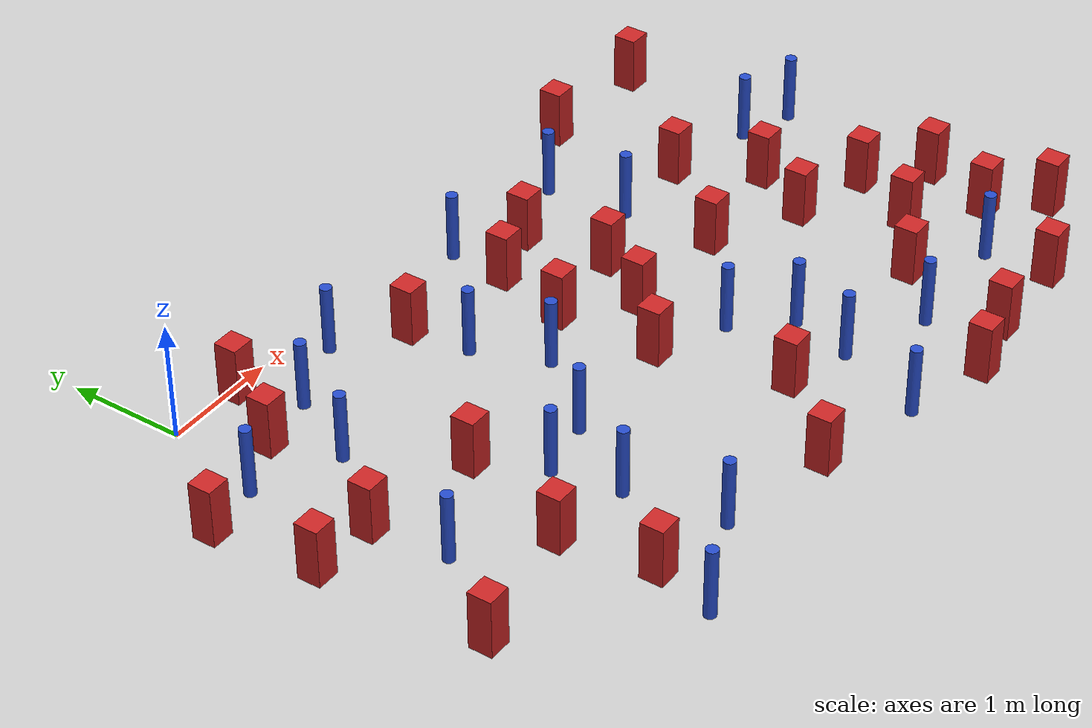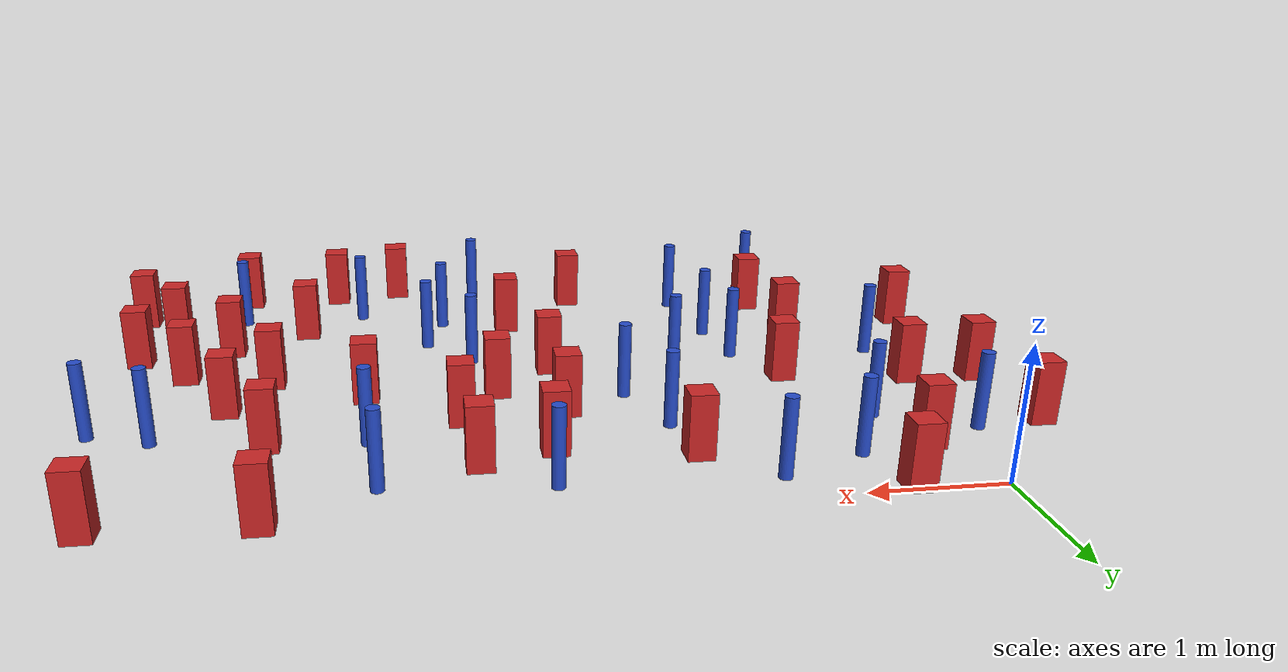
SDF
<sdf version="1.6">
 <model name="dense_63">
  <model name="pole_obstacle0">
   <static>true</static>
   <pose>1.45764528737 -3.91231881478 -9.47619616065e-06 5.49618799737e-07 2.36310414062e-07 -1.55090534798e-07</pose>
   <link name="link">
    <pose>0 0 0.3 0 -0 0</pose>
    <inertial>
     <mass>1</mass>
     <inertia><ixx>0.145833</ixx><ixy>0</ixy><ixz>0</ixz><iyy>0.145833</iyy><iyz>0</iyz><izz>0.125</izz></inertia>
    </inertial>
    <collision name="collision">
     <geometry><cylinder><radius>0.05</radius><length>.6</length></cylinder></geometry>
    </collision>
    <visual name="visual">
     <geometry><cylinder><radius>0.05</radius><length>.6</length></cylinder></geometry>
     <material>
      <script><name>Gazebo/Blue</name><uri>file://media/materials/scripts/gazebo.material</uri></script>
     </material>
    </visual>
   </link>
  </model>
  <model name="square_post_obstacle4">
   <static>true</static>
   <pose>-0.513113206835 -3.23635773973 -6.11067671241e-07 -5.50515727128e-06 -8.79689657224e-07 2.37013304536e-05</pose>
   <link name="link">
    <pose>0 0 0.25 0 -0 0</pose>
    <inertial>
     <mass>100</mass>
     <inertia>
      <ixx>0.166667</ixx>
      <ixy>0</ixy>
      <ixz>0</ixz>
      <iyy>0.166667</iyy>
      <iyz>0</iyz>
      <izz>0.166667</izz>
     </inertia>
    </inertial>
    <collision name="collision"><geometry><box><size>.2 .2 .5</size></box></geometry></collision>
    <visual name="visual">
     <geometry><box><size>.2 .2 .5</size></box></geometry>
     <material>
      <script><name>Gazebo/Red</name><uri>file://media/materials/scripts/gazebo.material</uri></script>
     </material>
    </visual>
   </link>
  </model>
  <model name="pole_obstacle7">
   <static>true</static>
   <pose>0.491600590641 -1.18340248795 -9.47619616065e-06 5.49618799737e-07 2.36310414059e-07 -1.55090534802e-07</pose>
   <link name="link">
    <pose>0 0 0.3 0 -0 0</pose>
    <inertial>
     <mass>1</mass>
     <inertia><ixx>0.145833</ixx><ixy>0</ixy><ixz>0</ixz><iyy>0.145833</iyy><iyz>0</iyz><izz>0.125</izz></inertia>
    </inertial>
    <collision name="collision">
     <geometry><cylinder><radius>0.05</radius><length>.6</length></cylinder></geometry>
    </collision>
    <visual name="visual">
     <geometry><cylinder><radius>0.05</radius><length>.6</length></cylinder></geometry>
     <material>
      <script><name>Gazebo/Blue</name><uri>file://media/materials/scripts/gazebo.material</uri></script>
     </material>
    </visual>
   </link>
  </model>
  <model name="pole_obstacle8">
   <static>true</static>
   <pose>0.036647531542 -2.49097002467 -9.4761961606e-06 5.49618799729e-07 2.36310413998e-07 -1.55090534825e-07</pose>
   <link name="link">
    <pose>0 0 0.3 0 -0 0</pose>
    <inertial>
     <mass>1</mass>
     <inertia><ixx>0.145833</ixx><ixy>0</ixy><ixz>0</ixz><iyy>0.145833</iyy><iyz>0</iyz><izz>0.125</izz></inertia>
    </inertial>
    <collision name="collision">
     <geometry><cylinder><radius>0.05</radius><length>.6</length></cylinder></geometry>
    </collision>
    <visual name="visual">
     <geometry><cylinder><radius>0.05</radius><length>.6</length></cylinder></geometry>
     <material>
      <script><name>Gazebo/Blue</name><uri>file://media/materials/scripts/gazebo.material</uri></script>
     </material>
    </visual>
   </link>
  </model>
  <model name="square_post_obstacle7">
   <static>true</static>
   <pose>-0.0492457941668 -1.85533432549 -6.11067671241e-07 -5.50515727128e-06 -8.79689657224e-07 2.37013304536e-05</pose>
   <link name="link">
    <pose>0 0 0.25 0 -0 0</pose>
    <inertial>
     <mass>100</mass>
     <inertia>
      <ixx>0.166667</ixx>
      <ixy>0</ixy>
      <ixz>0</ixz>
      <iyy>0.166667</iyy>
      <iyz>0</iyz>
      <izz>0.166667</izz>
     </inertia>
    </inertial>
    <collision name="collision"><geometry><box><size>.2 .2 .5</size></box></geometry></collision>
    <visual name="visual">
     <geometry><box><size>.2 .2 .5</size></box></geometry>
     <material>
      <script><name>Gazebo/Red</name><uri>file://media/materials/scripts/gazebo.material</uri></script>
     </material>
    </visual>
   </link>
  </model>
  <model name="pole_obstacle12">
   <static>true</static>
   <pose>4.19699384689 -0.435499464074 -9.47619616065e-06 5.49618799737e-07 2.36310414057e-07 -1.55090534802e-07</pose>
   <link name="link">
    <pose>0 0 0.3 0 -0 0</pose>
    <inertial>
     <mass>1</mass>
     <inertia><ixx>0.145833</ixx><ixy>0</ixy><ixz>0</ixz><iyy>0.145833</iyy><iyz>0</iyz><izz>0.125</izz></inertia>
    </inertial>
    <collision name="collision">
     <geometry><cylinder><radius>0.05</radius><length>.6</length></cylinder></geometry>
    </collision>
    <visual name="visual">
     <geometry><cylinder><radius>0.05</radius><length>.6</length></cylinder></geometry>
     <material>
      <script><name>Gazebo/Blue</name><uri>file://media/materials/scripts/gazebo.material</uri></script>
     </material>
    </visual>
   </link>
  </model>
  <model name="pole_obstacle15">
   <static>true</static>
   <pose>2.05337939577 -1.18928973745 -9.47619616065e-06 5.49618799737e-07 2.36310414072e-07 -1.55090534793e-07</pose>
   <link name="link">
    <pose>0 0 0.3 0 -0 0</pose>
    <inertial>
     <mass>1</mass>
     <inertia><ixx>0.145833</ixx><ixy>0</ixy><ixz>0</ixz><iyy>0.145833</iyy><iyz>0</iyz><izz>0.125</izz></inertia>
    </inertial>
    <collision name="collision">
     <geometry><cylinder><radius>0.05</radius><length>.6</length></cylinder></geometry>
    </collision>
    <visual name="visual">
     <geometry><cylinder><radius>0.05</radius><length>.6</length></cylinder></geometry>
     <material>
      <script><name>Gazebo/Blue</name><uri>file://media/materials/scripts/gazebo.material</uri></script>
     </material>
    </visual>
   </link>
  </model>
  <model name="square_post_obstacle14">
   <static>true</static>
   <pose>3.27732072388 -1.94028528122 -6.11067671241e-07 -5.50515727128e-06 -8.79689657224e-07 2.37013304536e-05</pose>
   <link name="link">
    <pose>0 0 0.25 0 -0 0</pose>
    <inertial>
     <mass>100</mass>
     <inertia>
      <ixx>0.166667</ixx>
      <ixy>0</ixy>
      <ixz>0</ixz>
      <iyy>0.166667</iyy>
      <iyz>0</iyz>
      <izz>0.166667</izz>
     </inertia>
    </inertial>
    <collision name="collision"><geometry><box><size>.2 .2 .5</size></box></geometry></collision>
    <visual name="visual">
     <geometry><box><size>.2 .2 .5</size></box></geometry>
     <material>
      <script><name>Gazebo/Red</name><uri>file://media/materials/scripts/gazebo.material</uri></script>
     </material>
    </visual>
   </link>
  </model>
  <model name="pole_obstacle29">
   <static>true</static>
   <pose>4.38228186623 -3.89737166803 -9.47619616065e-06 5.49618799738e-07 2.36310414051e-07 -1.55090534805e-07</pose>
   <link name="link">
    <pose>0 0 0.3 0 -0 0</pose>
    <inertial>
     <mass>1</mass>
     <inertia><ixx>0.145833</ixx><ixy>0</ixy><ixz>0</ixz><iyy>0.145833</iyy><iyz>0</iyz><izz>0.125</izz></inertia>
    </inertial>
    <collision name="collision">
     <geometry><cylinder><radius>0.05</radius><length>.6</length></cylinder></geometry>
    </collision>
    <visual name="visual">
     <geometry><cylinder><radius>0.05</radius><length>.6</length></cylinder></geometry>
     <material>
      <script><name>Gazebo/Blue</name><uri>file://media/materials/scripts/gazebo.material</uri></script>
     </material>
    </visual>
   </link>
  </model>
  <model name="square_post_obstacle25">
   <static>true</static>
   <pose>3.58611399307 -1.43804017746 -6.11067671241e-07 -5.50515727128e-06 -8.79689657224e-07 2.37013304536e-05</pose>
   <link name="link">
    <pose>0 0 0.25 0 -0 0</pose>
    <inertial>
     <mass>100</mass>
     <inertia>
      <ixx>0.166667</ixx>
      <ixy>0</ixy>
      <ixz>0</ixz>
      <iyy>0.166667</iyy>
      <iyz>0</iyz>
      <izz>0.166667</izz>
     </inertia>
    </inertial>
    <collision name="collision"><geometry><box><size>.2 .2 .5</size></box></geometry></collision>
    <visual name="visual">
     <geometry><box><size>.2 .2 .5</size></box></geometry>
     <material>
      <script><name>Gazebo/Red</name><uri>file://media/materials/scripts/gazebo.material</uri></script>
     </material>
    </visual>
   </link>
  </model>
  <model name="square_post_obstacle28">
   <static>true</static>
   <pose>3.07781566351 -3.44852902437 -6.11067671241e-07 -5.50515727128e-06 -8.79689657224e-07 2.37013304536e-05</pose>
   <link name="link">
    <pose>0 0 0.25 0 -0 0</pose>
    <inertial>
     <mass>100</mass>
     <inertia>
      <ixx>0.166667</ixx>
      <ixy>0</ixy>
      <ixz>0</ixz>
      <iyy>0.166667</iyy>
      <iyz>0</iyz>
      <izz>0.166667</izz>
     </inertia>
    </inertial>
    <collision name="collision"><geometry><box><size>.2 .2 .5</size></box></geometry></collision>
    <visual name="visual">
     <geometry><box><size>.2 .2 .5</size></box></geometry>
     <material>
      <script><name>Gazebo/Red</name><uri>file://media/materials/scripts/gazebo.material</uri></script>
     </material>
    </visual>
   </link>
  </model>
  <model name="pole_obstacle33">
   <static>true</static>
   <pose>3.32996329665 -4.36354754661 -9.47619616065e-06 5.49618799738e-07 2.3631041406e-07 -1.55090534801e-07</pose>
   <link name="link">
    <pose>0 0 0.3 0 -0 0</pose>
    <inertial>
     <mass>1</mass>
     <inertia><ixx>0.145833</ixx><ixy>0</ixy><ixz>0</ixz><iyy>0.145833</iyy><iyz>0</iyz><izz>0.125</izz></inertia>
    </inertial>
    <collision name="collision">
     <geometry><cylinder><radius>0.05</radius><length>.6</length></cylinder></geometry>
    </collision>
    <visual name="visual">
     <geometry><cylinder><radius>0.05</radius><length>.6</length></cylinder></geometry>
     <material>
      <script><name>Gazebo/Blue</name><uri>file://media/materials/scripts/gazebo.material</uri></script>
     </material>
    </visual>
   </link>
  </model>
  <model name="square_post_obstacle32">
   <static>true</static>
   <pose>0.944334524365 -2.0193535119 -6.11067671241e-07 -5.50515727128e-06 -8.79689657224e-07 2.37013304536e-05</pose>
   <link name="link">
    <pose>0 0 0.25 0 -0 0</pose>
    <inertial>
     <mass>100</mass>
     <inertia>
      <ixx>0.166667</ixx>
      <ixy>0</ixy>
      <ixz>0</ixz>
      <iyy>0.166667</iyy>
      <iyz>0</iyz>
      <izz>0.166667</izz>
     </inertia>
    </inertial>
    <collision name="collision"><geometry><box><size>.2 .2 .5</size></box></geometry></collision>
    <visual name="visual">
     <geometry><box><size>.2 .2 .5</size></box></geometry>
     <material>
      <script><name>Gazebo/Red</name><uri>file://media/materials/scripts/gazebo.material</uri></script>
     </material>
    </visual>
   </link>
  </model>
  <model name="square_post_obstacle33">
   <static>true</static>
   <pose>4.90996226972 -0.0184882465239 -6.11067671241e-07 -5.50515727128e-06 -8.79689657224e-07 2.37013304536e-05</pose>
   <link name="link">
    <pose>0 0 0.25 0 -0 0</pose>
    <inertial>
     <mass>100</mass>
     <inertia>
      <ixx>0.166667</ixx>
      <ixy>0</ixy>
      <ixz>0</ixz>
      <iyy>0.166667</iyy>
      <iyz>0</iyz>
      <izz>0.166667</izz>
     </inertia>
    </inertial>
    <collision name="collision"><geometry><box><size>.2 .2 .5</size></box></geometry></collision>
    <visual name="visual">
     <geometry><box><size>.2 .2 .5</size></box></geometry>
     <material>
      <script><name>Gazebo/Red</name><uri>file://media/materials/scripts/gazebo.material</uri></script>
     </material>
    </visual>
   </link>
  </model>
  <model name="pole_obstacle49">
   <static>true</static>
   <pose>1.22181753128 -2.53847772462 -9.47619616065e-06 5.49618799737e-07 2.36310414062e-07 -1.55090534798e-07</pose>
   <link name="link">
    <pose>0 0 0.3 0 -0 0</pose>
    <inertial>
     <mass>1</mass>
     <inertia><ixx>0.145833</ixx><ixy>0</ixy><ixz>0</ixz><iyy>0.145833</iyy><iyz>0</iyz><izz>0.125</izz></inertia>
    </inertial>
    <collision name="collision">
     <geometry><cylinder><radius>0.05</radius><length>.6</length></cylinder></geometry>
    </collision>
    <visual name="visual">
     <geometry><cylinder><radius>0.05</radius><length>.6</length></cylinder></geometry>
     <material>
      <script><name>Gazebo/Blue</name><uri>file://media/materials/scripts/gazebo.material</uri></script>
     </material>
    </visual>
   </link>
  </model>
  <model name="pole_obstacle54">
   <static>true</static>
   <pose>6.30250653754 -1.4830554348 -9.47619616065e-06 5.49618799738e-07 2.36310414071e-07 -1.55090534796e-07</pose>
   <link name="link">
    <pose>0 0 0.3 0 -0 0</pose>
    <inertial>
     <mass>1</mass>
     <inertia><ixx>0.145833</ixx><ixy>0</ixy><ixz>0</ixz><iyy>0.145833</iyy><iyz>0</iyz><izz>0.125</izz></inertia>
    </inertial>
    <collision name="collision">
     <geometry><cylinder><radius>0.05</radius><length>.6</length></cylinder></geometry>
    </collision>
    <visual name="visual">
     <geometry><cylinder><radius>0.05</radius><length>.6</length></cylinder></geometry>
     <material>
      <script><name>Gazebo/Blue</name><uri>file://media/materials/scripts/gazebo.material</uri></script>
     </material>
    </visual>
   </link>
  </model>
  <model name="square_post_obstacle45">
   <static>true</static>
   <pose>0.733690018151 -3.7953399862 -6.11067671241e-07 -5.50515727128e-06 -8.79689657224e-07 2.37013304536e-05</pose>
   <link name="link">
    <pose>0 0 0.25 0 -0 0</pose>
    <inertial>
     <mass>100</mass>
     <inertia>
      <ixx>0.166667</ixx>
      <ixy>0</ixy>
      <ixz>0</ixz>
      <iyy>0.166667</iyy>
      <iyz>0</iyz>
      <izz>0.166667</izz>
     </inertia>
    </inertial>
    <collision name="collision"><geometry><box><size>.2 .2 .5</size></box></geometry></collision>
    <visual name="visual">
     <geometry><box><size>.2 .2 .5</size></box></geometry>
     <material>
      <script><name>Gazebo/Red</name><uri>file://media/materials/scripts/gazebo.material</uri></script>
     </material>
    </visual>
   </link>
  </model>
  <model name="square_post_obstacle46">
   <static>true</static>
   <pose>6.33735917711 -3.96002381666 -6.11067671241e-07 -5.50515727128e-06 -8.79689657224e-07 2.37013304536e-05</pose>
   <link name="link">
    <pose>0 0 0.25 0 -0 0</pose>
    <inertial>
     <mass>100</mass>
     <inertia>
      <ixx>0.166667</ixx>
      <ixy>0</ixy>
      <ixz>0</ixz>
      <iyy>0.166667</iyy>
      <iyz>0</iyz>
      <izz>0.166667</izz>
     </inertia>
    </inertial>
    <collision name="collision"><geometry><box><size>.2 .2 .5</size></box></geometry></collision>
    <visual name="visual">
     <geometry><box><size>.2 .2 .5</size></box></geometry>
     <material>
      <script><name>Gazebo/Red</name><uri>file://media/materials/scripts/gazebo.material</uri></script>
     </material>
    </visual>
   </link>
  </model>
  <model name="pole_obstacle62">
   <static>true</static>
   <pose>0.815735617671 -0.556137734574 -9.47619616065e-06 5.49618799737e-07 2.36310414058e-07 -1.55090534802e-07</pose>
   <link name="link">
    <pose>0 0 0.3 0 -0 0</pose>
    <inertial>
     <mass>1</mass>
     <inertia><ixx>0.145833</ixx><ixy>0</ixy><ixz>0</ixz><iyy>0.145833</iyy><iyz>0</iyz><izz>0.125</izz></inertia>
    </inertial>
    <collision name="collision">
     <geometry><cylinder><radius>0.05</radius><length>.6</length></cylinder></geometry>
    </collision>
    <visual name="visual">
     <geometry><cylinder><radius>0.05</radius><length>.6</length></cylinder></geometry>
     <material>
      <script><name>Gazebo/Blue</name><uri>file://media/materials/scripts/gazebo.material</uri></script>
     </material>
    </visual>
   </link>
  </model>
  <model name="square_post_obstacle53">
   <static>true</static>
   <pose>4.99241569234 -1.16344092513 -6.11067671241e-07 -5.50515727128e-06 -8.79689657224e-07 2.37013304536e-05</pose>
   <link name="link">
    <pose>0 0 0.25 0 -0 0</pose>
    <inertial>
     <mass>100</mass>
     <inertia>
      <ixx>0.166667</ixx>
      <ixy>0</ixy>
      <ixz>0</ixz>
      <iyy>0.166667</iyy>
      <iyz>0</iyz>
      <izz>0.166667</izz>
     </inertia>
    </inertial>
    <collision name="collision"><geometry><box><size>.2 .2 .5</size></box></geometry></collision>
    <visual name="visual">
     <geometry><box><size>.2 .2 .5</size></box></geometry>
     <material>
      <script><name>Gazebo/Red</name><uri>file://media/materials/scripts/gazebo.material</uri></script>
     </material>
    </visual>
   </link>
  </model>
  <model name="square_post_obstacle70">
   <static>true</static>
   <pose>3.50005662282 -0.685359226608 -6.11067671241e-07 -5.50515727128e-06 -8.79689657224e-07 2.37013304536e-05</pose>
   <link name="link">
    <pose>0 0 0.25 0 -0 0</pose>
    <inertial>
     <mass>100</mass>
     <inertia>
      <ixx>0.166667</ixx>
      <ixy>0</ixy>
      <ixz>0</ixz>
      <iyy>0.166667</iyy>
      <iyz>0</iyz>
      <izz>0.166667</izz>
     </inertia>
    </inertial>
    <collision name="collision"><geometry><box><size>.2 .2 .5</size></box></geometry></collision>
    <visual name="visual">
     <geometry><box><size>.2 .2 .5</size></box></geometry>
     <material>
      <script><name>Gazebo/Red</name><uri>file://media/materials/scripts/gazebo.material</uri></script>
     </material>
    </visual>
   </link>
  </model>
  <model name="pole_obstacle83">
   <static>true</static>
   <pose>2.29108792412 -1.79447740261 -9.47619616065e-06 5.49618799737e-07 2.36310414072e-07 -1.55090534793e-07</pose>
   <link name="link">
    <pose>0 0 0.3 0 -0 0</pose>
    <inertial>
     <mass>1</mass>
     <inertia><ixx>0.145833</ixx><ixy>0</ixy><ixz>0</ixz><iyy>0.145833</iyy><iyz>0</iyz><izz>0.125</izz></inertia>
    </inertial>
    <collision name="collision">
     <geometry><cylinder><radius>0.05</radius><length>.6</length></cylinder></geometry>
    </collision>
    <visual name="visual">
     <geometry><cylinder><radius>0.05</radius><length>.6</length></cylinder></geometry>
     <material>
      <script><name>Gazebo/Blue</name><uri>file://media/materials/scripts/gazebo.material</uri></script>
     </material>
    </visual>
   </link>
  </model>
  <model name="pole_obstacle89">
   <static>true</static>
   <pose>3.43357874101 -2.65526650992 -9.47619616065e-06 5.49618799737e-07 2.36310414051e-07 -1.55090534807e-07</pose>
   <link name="link">
    <pose>0 0 0.3 0 -0 0</pose>
    <inertial>
     <mass>1</mass>
     <inertia><ixx>0.145833</ixx><ixy>0</ixy><ixz>0</ixz><iyy>0.145833</iyy><iyz>0</iyz><izz>0.125</izz></inertia>
    </inertial>
    <collision name="collision">
     <geometry><cylinder><radius>0.05</radius><length>.6</length></cylinder></geometry>
    </collision>
    <visual name="visual">
     <geometry><cylinder><radius>0.05</radius><length>.6</length></cylinder></geometry>
     <material>
      <script><name>Gazebo/Blue</name><uri>file://media/materials/scripts/gazebo.material</uri></script>
     </material>
    </visual>
   </link>
  </model>
  <model name="square_post_obstacle84">
   <static>true</static>
   <pose>5.46082386531 -3.09907040379 -6.11067671241e-07 -5.50515727128e-06 -8.79689657224e-07 2.37013304536e-05</pose>
   <link name="link">
    <pose>0 0 0.25 0 -0 0</pose>
    <inertial>
     <mass>100</mass>
     <inertia>
      <ixx>0.166667</ixx>
      <ixy>0</ixy>
      <ixz>0</ixz>
      <iyy>0.166667</iyy>
      <iyz>0</iyz>
      <izz>0.166667</izz>
     </inertia>
    </inertial>
    <collision name="collision"><geometry><box><size>.2 .2 .5</size></box></geometry></collision>
    <visual name="visual">
     <geometry><box><size>.2 .2 .5</size></box></geometry>
     <material>
      <script><name>Gazebo/Red</name><uri>file://media/materials/scripts/gazebo.material</uri></script>
     </material>
    </visual>
   </link>
  </model>
  <model name="pole_obstacle93">
   <static>true</static>
   <pose>3.79655432508 -3.07418397999 -9.47619616065e-06 5.49618799737e-07 2.36310414051e-07 -1.55090534807e-07</pose>
   <link name="link">
    <pose>0 0 0.3 0 -0 0</pose>
    <inertial>
     <mass>1</mass>
     <inertia><ixx>0.145833</ixx><ixy>0</ixy><ixz>0</ixz><iyy>0.145833</iyy><iyz>0</iyz><izz>0.125</izz></inertia>
    </inertial>
    <collision name="collision">
     <geometry><cylinder><radius>0.05</radius><length>.6</length></cylinder></geometry>
    </collision>
    <visual name="visual">
     <geometry><cylinder><radius>0.05</radius><length>.6</length></cylinder></geometry>
     <material>
      <script><name>Gazebo/Blue</name><uri>file://media/materials/scripts/gazebo.material</uri></script>
     </material>
    </visual>
   </link>
  </model>
  <model name="pole_obstacle99">
   <static>true</static>
   <pose>3.00447818259 -0.332797958913 -9.47619616065e-06 5.49618799738e-07 2.36310414074e-07 -1.55090534794e-07</pose>
   <link name="link">
    <pose>0 0 0.3 0 -0 0</pose>
    <inertial>
     <mass>1</mass>
     <inertia><ixx>0.145833</ixx><ixy>0</ixy><ixz>0</ixz><iyy>0.145833</iyy><iyz>0</iyz><izz>0.125</izz></inertia>
    </inertial>
    <collision name="collision">
     <geometry><cylinder><radius>0.05</radius><length>.6</length></cylinder></geometry>
    </collision>
    <visual name="visual">
     <geometry><cylinder><radius>0.05</radius><length>.6</length></cylinder></geometry>
     <material>
      <script><name>Gazebo/Blue</name><uri>file://media/materials/scripts/gazebo.material</uri></script>
     </material>
    </visual>
   </link>
  </model>
  <model name="pole_obstacle108">
   <static>true</static>
   <pose>1.32068198017 -3.10183576846 -9.47619616065e-06 5.49618799737e-07 2.36310414062e-07 -1.55090534798e-07</pose>
   <link name="link">
    <pose>0 0 0.3 0 -0 0</pose>
    <inertial>
     <mass>1</mass>
     <inertia><ixx>0.145833</ixx><ixy>0</ixy><ixz>0</ixz><iyy>0.145833</iyy><iyz>0</iyz><izz>0.125</izz></inertia>
    </inertial>
    <collision name="collision">
     <geometry><cylinder><radius>0.05</radius><length>.6</length></cylinder></geometry>
    </collision>
    <visual name="visual">
     <geometry><cylinder><radius>0.05</radius><length>.6</length></cylinder></geometry>
     <material>
      <script><name>Gazebo/Blue</name><uri>file://media/materials/scripts/gazebo.material</uri></script>
     </material>
    </visual>
   </link>
  </model>
  <model name="pole_obstacle112">
   <static>true</static>
   <pose>3.64876796155 -3.60367646899 -9.47619616065e-06 5.49618799737e-07 2.36310414051e-07 -1.55090534807e-07</pose>
   <link name="link">
    <pose>0 0 0.3 0 -0 0</pose>
    <inertial>
     <mass>1</mass>
     <inertia><ixx>0.145833</ixx><ixy>0</ixy><ixz>0</ixz><iyy>0.145833</iyy><iyz>0</iyz><izz>0.125</izz></inertia>
    </inertial>
    <collision name="collision">
     <geometry><cylinder><radius>0.05</radius><length>.6</length></cylinder></geometry>
    </collision>
    <visual name="visual">
     <geometry><cylinder><radius>0.05</radius><length>.6</length></cylinder></geometry>
     <material>
      <script><name>Gazebo/Blue</name><uri>file://media/materials/scripts/gazebo.material</uri></script>
     </material>
    </visual>
   </link>
  </model>
  <model name="square_post_obstacle120">
   <static>true</static>
   <pose>0.637352127785 -0.0540733412512 -6.11067671241e-07 -5.50515727128e-06 -8.79689657224e-07 2.37013304536e-05</pose>
   <link name="link">
    <pose>0 0 0.25 0 -0 0</pose>
    <inertial>
     <mass>100</mass>
     <inertia>
      <ixx>0.166667</ixx>
      <ixy>0</ixy>
      <ixz>0</ixz>
      <iyy>0.166667</iyy>
      <iyz>0</iyz>
      <izz>0.166667</izz>
     </inertia>
    </inertial>
    <collision name="collision"><geometry><box><size>.2 .2 .5</size></box></geometry></collision>
    <visual name="visual">
     <geometry><box><size>.2 .2 .5</size></box></geometry>
     <material>
      <script><name>Gazebo/Red</name><uri>file://media/materials/scripts/gazebo.material</uri></script>
     </material>
    </visual>
   </link>
  </model>
  <model name="pole_obstacle120">
   <static>true</static>
   <pose>-0.201980382916 -0.878380960051 -9.47619616065e-06 5.49618799737e-07 2.36310414051e-07 -1.55090534806e-07</pose>
   <link name="link">
    <pose>0 0 0.3 0 -0 0</pose>
    <inertial>
     <mass>1</mass>
     <inertia><ixx>0.145833</ixx><ixy>0</ixy><ixz>0</ixz><iyy>0.145833</iyy><iyz>0</iyz><izz>0.125</izz></inertia>
    </inertial>
    <collision name="collision">
     <geometry><cylinder><radius>0.05</radius><length>.6</length></cylinder></geometry>
    </collision>
    <visual name="visual">
     <geometry><cylinder><radius>0.05</radius><length>.6</length></cylinder></geometry>
     <material>
      <script><name>Gazebo/Blue</name><uri>file://media/materials/scripts/gazebo.material</uri></script>
     </material>
    </visual>
   </link>
  </model>
  <model name="pole_obstacle126">
   <static>true</static>
   <pose>0.591665066067 -4.31535992664 -9.47619616065e-06 5.49618799737e-07 2.36310414065e-07 -1.55090534796e-07</pose>
   <link name="link">
    <pose>0 0 0.3 0 -0 0</pose>
    <inertial>
     <mass>1</mass>
     <inertia><ixx>0.145833</ixx><ixy>0</ixy><ixz>0</ixz><iyy>0.145833</iyy><iyz>0</iyz><izz>0.125</izz></inertia>
    </inertial>
    <collision name="collision">
     <geometry><cylinder><radius>0.05</radius><length>.6</length></cylinder></geometry>
    </collision>
    <visual name="visual">
     <geometry><cylinder><radius>0.05</radius><length>.6</length></cylinder></geometry>
     <material>
      <script><name>Gazebo/Blue</name><uri>file://media/materials/scripts/gazebo.material</uri></script>
     </material>
    </visual>
   </link>
  </model>
  <model name="square_post_obstacle127">
   <static>true</static>
   <pose>5.44596167424 -4.41347139397 -6.11067671241e-07 -5.50515727128e-06 -8.79689657224e-07 2.37013304536e-05</pose>
   <link name="link">
    <pose>0 0 0.25 0 -0 0</pose>
    <inertial>
     <mass>100</mass>
     <inertia>
      <ixx>0.166667</ixx>
      <ixy>0</ixy>
      <ixz>0</ixz>
      <iyy>0.166667</iyy>
      <iyz>0</iyz>
      <izz>0.166667</izz>
     </inertia>
    </inertial>
    <collision name="collision"><geometry><box><size>.2 .2 .5</size></box></geometry></collision>
    <visual name="visual">
     <geometry><box><size>.2 .2 .5</size></box></geometry>
     <material>
      <script><name>Gazebo/Red</name><uri>file://media/materials/scripts/gazebo.material</uri></script>
     </material>
    </visual>
   </link>
  </model>
  <model name="square_post_obstacle136">
   <static>true</static>
   <pose>5.35245002957 -1.80885654215 -6.11067671241e-07 -5.50515727128e-06 -8.79689657224e-07 2.37013304536e-05</pose>
   <link name="link">
    <pose>0 0 0.25 0 -0 0</pose>
    <inertial>
     <mass>100</mass>
     <inertia>
      <ixx>0.166667</ixx>
      <ixy>0</ixy>
      <ixz>0</ixz>
      <iyy>0.166667</iyy>
      <iyz>0</iyz>
      <izz>0.166667</izz>
     </inertia>
    </inertial>
    <collision name="collision"><geometry><box><size>.2 .2 .5</size></box></geometry></collision>
    <visual name="visual">
     <geometry><box><size>.2 .2 .5</size></box></geometry>
     <material>
      <script><name>Gazebo/Red</name><uri>file://media/materials/scripts/gazebo.material</uri></script>
     </material>
    </visual>
   </link>
  </model>
  <model name="square_post_obstacle138">
   <static>true</static>
   <pose>4.30357921367 -1.96160060492 -6.11067671241e-07 -5.50515727128e-06 -8.79689657224e-07 2.37013304536e-05</pose>
   <link name="link">
    <pose>0 0 0.25 0 -0 0</pose>
    <inertial>
     <mass>100</mass>
     <inertia>
      <ixx>0.166667</ixx>
      <ixy>0</ixy>
      <ixz>0</ixz>
      <iyy>0.166667</iyy>
      <iyz>0</iyz>
      <izz>0.166667</izz>
     </inertia>
    </inertial>
    <collision name="collision"><geometry><box><size>.2 .2 .5</size></box></geometry></collision>
    <visual name="visual">
     <geometry><box><size>.2 .2 .5</size></box></geometry>
     <material>
      <script><name>Gazebo/Red</name><uri>file://media/materials/scripts/gazebo.material</uri></script>
     </material>
    </visual>
   </link>
  </model>
  <model name="square_post_obstacle142">
   <static>true</static>
   <pose>0.606535032504 -3.0171237286 -6.11067671241e-07 -5.50515727128e-06 -8.79689657224e-07 2.37013304536e-05</pose>
   <link name="link">
    <pose>0 0 0.25 0 -0 0</pose>
    <inertial>
     <mass>100</mass>
     <inertia>
      <ixx>0.166667</ixx>
      <ixy>0</ixy>
      <ixz>0</ixz>
      <iyy>0.166667</iyy>
      <iyz>0</iyz>
      <izz>0.166667</izz>
     </inertia>
    </inertial>
    <collision name="collision"><geometry><box><size>.2 .2 .5</size></box></geometry></collision>
    <visual name="visual">
     <geometry><box><size>.2 .2 .5</size></box></geometry>
     <material>
      <script><name>Gazebo/Red</name><uri>file://media/materials/scripts/gazebo.material</uri></script>
     </material>
    </visual>
   </link>
  </model>
  <model name="square_post_obstacle147">
   <static>true</static>
   <pose>5.05735936688 -2.34002270155 -6.11067671241e-07 -5.50515727128e-06 -8.79689657224e-07 2.37013304536e-05</pose>
   <link name="link">
    <pose>0 0 0.25 0 -0 0</pose>
    <inertial>
     <mass>100</mass>
     <inertia>
      <ixx>0.166667</ixx>
      <ixy>0</ixy>
      <ixz>0</ixz>
      <iyy>0.166667</iyy>
      <iyz>0</iyz>
      <izz>0.166667</izz>
     </inertia>
    </inertial>
    <collision name="collision"><geometry><box><size>.2 .2 .5</size></box></geometry></collision>
    <visual name="visual">
     <geometry><box><size>.2 .2 .5</size></box></geometry>
     <material>
      <script><name>Gazebo/Red</name><uri>file://media/materials/scripts/gazebo.material</uri></script>
     </material>
    </visual>
   </link>
  </model>
  <model name="square_post_obstacle157">
   <static>true</static>
   <pose>2.78221780398 -1.52225461219 -6.11067671241e-07 -5.50515727128e-06 -8.79689657224e-07 2.37013304536e-05</pose>
   <link name="link">
    <pose>0 0 0.25 0 -0 0</pose>
    <inertial>
     <mass>100</mass>
     <inertia>
      <ixx>0.166667</ixx>
      <ixy>0</ixy>
      <ixz>0</ixz>
      <iyy>0.166667</iyy>
      <iyz>0</iyz>
      <izz>0.166667</izz>
     </inertia>
    </inertial>
    <collision name="collision"><geometry><box><size>.2 .2 .5</size></box></geometry></collision>
    <visual name="visual">
     <geometry><box><size>.2 .2 .5</size></box></geometry>
     <material>
      <script><name>Gazebo/Red</name><uri>file://media/materials/scripts/gazebo.material</uri></script>
     </material>
    </visual>
   </link>
  </model>
  <model name="square_post_obstacle162">
   <static>true</static>
   <pose>5.75767300333 -2.5189554892 -6.11067671241e-07 -5.50515727128e-06 -8.79689657224e-07 2.37013304536e-05</pose>
   <link name="link">
    <pose>0 0 0.25 0 -0 0</pose>
    <inertial>
     <mass>100</mass>
     <inertia>
      <ixx>0.166667</ixx>
      <ixy>0</ixy>
      <ixz>0</ixz>
      <iyy>0.166667</iyy>
      <iyz>0</iyz>
      <izz>0.166667</izz>
     </inertia>
    </inertial>
    <collision name="collision"><geometry><box><size>.2 .2 .5</size></box></geometry></collision>
    <visual name="visual">
     <geometry><box><size>.2 .2 .5</size></box></geometry>
     <material>
      <script><name>Gazebo/Red</name><uri>file://media/materials/scripts/gazebo.material</uri></script>
     </material>
    </visual>
   </link>
  </model>
  <model name="square_post_obstacle167">
   <static>true</static>
   <pose>-0.709812378945 -0.954358556164 -6.11067671241e-07 -5.50515727128e-06 -8.79689657224e-07 2.37013304536e-05</pose>
   <link name="link">
    <pose>0 0 0.25 0 -0 0</pose>
    <inertial>
     <mass>100</mass>
     <inertia>
      <ixx>0.166667</ixx>
      <ixy>0</ixy>
      <ixz>0</ixz>
      <iyy>0.166667</iyy>
      <iyz>0</iyz>
      <izz>0.166667</izz>
     </inertia>
    </inertial>
    <collision name="collision"><geometry><box><size>.2 .2 .5</size></box></geometry></collision>
    <visual name="visual">
     <geometry><box><size>.2 .2 .5</size></box></geometry>
     <material>
      <script><name>Gazebo/Red</name><uri>file://media/materials/scripts/gazebo.material</uri></script>
     </material>
    </visual>
   </link>
  </model>
  <model name="pole_obstacle172">
   <static>true</static>
   <pose>5.43516915783 -3.85814082088 -9.47619616065e-06 5.49618799738e-07 2.36310414051e-07 -1.55090534805e-07</pose>
   <link name="link">
    <pose>0 0 0.3 0 -0 0</pose>
    <inertial>
     <mass>1</mass>
     <inertia><ixx>0.145833</ixx><ixy>0</ixy><ixz>0</ixz><iyy>0.145833</iyy><iyz>0</iyz><izz>0.125</izz></inertia>
    </inertial>
    <collision name="collision">
     <geometry><cylinder><radius>0.05</radius><length>.6</length></cylinder></geometry>
    </collision>
    <visual name="visual">
     <geometry><cylinder><radius>0.05</radius><length>.6</length></cylinder></geometry>
     <material>
      <script><name>Gazebo/Blue</name><uri>file://media/materials/scripts/gazebo.material</uri></script>
     </material>
    </visual>
   </link>
  </model>
  <model name="square_post_obstacle172">
   <static>true</static>
   <pose>4.85409691866 -3.47517051072 -6.11067671241e-07 -5.50515727128e-06 -8.79689657224e-07 2.37013304536e-05</pose>
   <link name="link">
    <pose>0 0 0.25 0 -0 0</pose>
    <inertial>
     <mass>100</mass>
     <inertia>
      <ixx>0.166667</ixx>
      <ixy>0</ixy>
      <ixz>0</ixz>
      <iyy>0.166667</iyy>
      <iyz>0</iyz>
      <izz>0.166667</izz>
     </inertia>
    </inertial>
    <collision name="collision"><geometry><box><size>.2 .2 .5</size></box></geometry></collision>
    <visual name="visual">
     <geometry><box><size>.2 .2 .5</size></box></geometry>
     <material>
      <script><name>Gazebo/Red</name><uri>file://media/materials/scripts/gazebo.material</uri></script>
     </material>
    </visual>
   </link>
  </model>
  <model name="pole_obstacle179">
   <static>true</static>
   <pose>1.74304431504 -2.42977251697 -9.47619616065e-06 5.49618799737e-07 2.36310414062e-07 -1.55090534798e-07</pose>
   <link name="link">
    <pose>0 0 0.3 0 -0 0</pose>
    <inertial>
     <mass>1</mass>
     <inertia><ixx>0.145833</ixx><ixy>0</ixy><ixz>0</ixz><iyy>0.145833</iyy><iyz>0</iyz><izz>0.125</izz></inertia>
    </inertial>
    <collision name="collision">
     <geometry><cylinder><radius>0.05</radius><length>.6</length></cylinder></geometry>
    </collision>
    <visual name="visual">
     <geometry><cylinder><radius>0.05</radius><length>.6</length></cylinder></geometry>
     <material>
      <script><name>Gazebo/Blue</name><uri>file://media/materials/scripts/gazebo.material</uri></script>
     </material>
    </visual>
   </link>
  </model>
  <model name="square_post_obstacle177">
   <static>true</static>
   <pose>2.42569512224 -4.12944971251 -6.11067671241e-07 -5.50515727128e-06 -8.79689657224e-07 2.37013304536e-05</pose>
   <link name="link">
    <pose>0 0 0.25 0 -0 0</pose>
    <inertial>
     <mass>100</mass>
     <inertia>
      <ixx>0.166667</ixx>
      <ixy>0</ixy>
      <ixz>0</ixz>
      <iyy>0.166667</iyy>
      <iyz>0</iyz>
      <izz>0.166667</izz>
     </inertia>
    </inertial>
    <collision name="collision"><geometry><box><size>.2 .2 .5</size></box></geometry></collision>
    <visual name="visual">
     <geometry><box><size>.2 .2 .5</size></box></geometry>
     <material>
      <script><name>Gazebo/Red</name><uri>file://media/materials/scripts/gazebo.material</uri></script>
     </material>
    </visual>
   </link>
  </model>
  <model name="square_post_obstacle184">
   <static>true</static>
   <pose>1.96667768764 -0.68173326406 -6.11067671241e-07 -5.50515727128e-06 -8.79689657224e-07 2.37013304536e-05</pose>
   <link name="link">
    <pose>0 0 0.25 0 -0 0</pose>
    <inertial>
     <mass>100</mass>
     <inertia>
      <ixx>0.166667</ixx>
      <ixy>0</ixy>
      <ixz>0</ixz>
      <iyy>0.166667</iyy>
      <iyz>0</iyz>
      <izz>0.166667</izz>
     </inertia>
    </inertial>
    <collision name="collision"><geometry><box><size>.2 .2 .5</size></box></geometry></collision>
    <visual name="visual">
     <geometry><box><size>.2 .2 .5</size></box></geometry>
     <material>
      <script><name>Gazebo/Red</name><uri>file://media/materials/scripts/gazebo.material</uri></script>
     </material>
    </visual>
   </link>
  </model>
  <model name="square_post_obstacle190">
   <static>true</static>
   <pose>4.62704097338 -4.43661426832 -6.11067671241e-07 -5.50515727128e-06 -8.79689657224e-07 2.37013304536e-05</pose>
   <link name="link">
    <pose>0 0 0.25 0 -0 0</pose>
    <inertial>
     <mass>100</mass>
     <inertia>
      <ixx>0.166667</ixx>
      <ixy>0</ixy>
      <ixz>0</ixz>
      <iyy>0.166667</iyy>
      <iyz>0</iyz>
      <izz>0.166667</izz>
     </inertia>
    </inertial>
    <collision name="collision"><geometry><box><size>.2 .2 .5</size></box></geometry></collision>
    <visual name="visual">
     <geometry><box><size>.2 .2 .5</size></box></geometry>
     <material>
      <script><name>Gazebo/Red</name><uri>file://media/materials/scripts/gazebo.material</uri></script>
     </material>
    </visual>
   </link>
  </model>
  <model name="square_post_obstacle192">
   <static>true</static>
   <pose>6.20075531926 -2.93160722702 -6.11067671241e-07 -5.50515727128e-06 -8.79689657224e-07 2.37013304536e-05</pose>
   <link name="link">
    <pose>0 0 0.25 0 -0 0</pose>
    <inertial>
     <mass>100</mass>
     <inertia>
      <ixx>0.166667</ixx>
      <ixy>0</ixy>
      <ixz>0</ixz>
      <iyy>0.166667</iyy>
      <iyz>0</iyz>
      <izz>0.166667</izz>
     </inertia>
    </inertial>
    <collision name="collision"><geometry><box><size>.2 .2 .5</size></box></geometry></collision>
    <visual name="visual">
     <geometry><box><size>.2 .2 .5</size></box></geometry>
     <material>
      <script><name>Gazebo/Red</name><uri>file://media/materials/scripts/gazebo.material</uri></script>
     </material>
    </visual>
   </link>
  </model>
  <model name="square_post_obstacle193">
   <static>true</static>
   <pose>0.28379956665 -0.656442227965 -6.11067671241e-07 -5.50515727128e-06 -8.79689657224e-07 2.37013304536e-05</pose>
   <link name="link">
    <pose>0 0 0.25 0 -0 0</pose>
    <inertial>
     <mass>100</mass>
     <inertia>
      <ixx>0.166667</ixx>
      <ixy>0</ixy>
      <ixz>0</ixz>
      <iyy>0.166667</iyy>
      <iyz>0</iyz>
      <izz>0.166667</izz>
     </inertia>
    </inertial>
    <collision name="collision"><geometry><box><size>.2 .2 .5</size></box></geometry></collision>
    <visual name="visual">
     <geometry><box><size>.2 .2 .5</size></box></geometry>
     <material>
      <script><name>Gazebo/Red</name><uri>file://media/materials/scripts/gazebo.material</uri></script>
     </material>
    </visual>
   </link>
  </model>
  <model name="square_post_obstacle195">
   <static>true</static>
   <pose>-0.619637948167 -1.83423185392 -6.11067671241e-07 -5.50515727128e-06 -8.79689657224e-07 2.37013304536e-05</pose>
   <link name="link">
    <pose>0 0 0.25 0 -0 0</pose>
    <inertial>
     <mass>100</mass>
     <inertia>
      <ixx>0.166667</ixx>
      <ixy>0</ixy>
      <ixz>0</ixz>
      <iyy>0.166667</iyy>
      <iyz>0</iyz>
      <izz>0.166667</izz>
     </inertia>
    </inertial>
    <collision name="collision"><geometry><box><size>.2 .2 .5</size></box></geometry></collision>
    <visual name="visual">
     <geometry><box><size>.2 .2 .5</size></box></geometry>
     <material>
      <script><name>Gazebo/Red</name><uri>file://media/materials/scripts/gazebo.material</uri></script>
     </material>
    </visual>
   </link>
  </model>
  <model name="square_post_obstacle199">
   <static>true</static>
   <pose>5.98888337416 -0.0525218733148 -6.11067671241e-07 -5.50515727128e-06 -8.79689657224e-07 2.37013304536e-05</pose>
   <link name="link">
    <pose>0 0 0.25 0 -0 0</pose>
    <inertial>
     <mass>100</mass>
     <inertia>
      <ixx>0.166667</ixx>
      <ixy>0</ixy>
      <ixz>0</ixz>
      <iyy>0.166667</iyy>
      <iyz>0</iyz>
      <izz>0.166667</izz>
     </inertia>
    </inertial>
    <collision name="collision"><geometry><box><size>.2 .2 .5</size></box></geometry></collision>
    <visual name="visual">
     <geometry><box><size>.2 .2 .5</size></box></geometry>
     <material>
      <script><name>Gazebo/Red</name><uri>file://media/materials/scripts/gazebo.material</uri></script>
     </material>
    </visual>
   </link>
  </model>
  <model name="pole_obstacle192">
   <static>true</static>
   <pose>1.46516401696 -0.283891417377 -9.47619616065e-06 5.49618799737e-07 2.36310414056e-07 -1.55090534803e-07</pose>
   <link name="link">
    <pose>0 0 0.3 0 -0 0</pose>
    <inertial>
     <mass>1</mass>
     <inertia><ixx>0.145833</ixx><ixy>0</ixy><ixz>0</ixz><iyy>0.145833</iyy><iyz>0</iyz><izz>0.125</izz></inertia>
    </inertial>
    <collision name="collision">
     <geometry><cylinder><radius>0.05</radius><length>.6</length></cylinder></geometry>
    </collision>
    <visual name="visual">
     <geometry><cylinder><radius>0.05</radius><length>.6</length></cylinder></geometry>
     <material>
      <script><name>Gazebo/Blue</name><uri>file://media/materials/scripts/gazebo.material</uri></script>
     </material>
    </visual>
   </link>
  </model>
  <model name="square_post_obstacle212">
   <static>true</static>
   <pose>5.98748316313 -3.54355807059 -6.11067671241e-07 -5.50515727128e-06 -8.79689657224e-07 2.37013304536e-05</pose>
   <link name="link">
    <pose>0 0 0.25 0 -0 0</pose>
    <inertial>
     <mass>100</mass>
     <inertia>
      <ixx>0.166667</ixx>
      <ixy>0</ixy>
      <ixz>0</ixz>
      <iyy>0.166667</iyy>
      <iyz>0</iyz>
      <izz>0.166667</izz>
     </inertia>
    </inertial>
    <collision name="collision"><geometry><box><size>.2 .2 .5</size></box></geometry></collision>
    <visual name="visual">
     <geometry><box><size>.2 .2 .5</size></box></geometry>
     <material>
      <script><name>Gazebo/Red</name><uri>file://media/materials/scripts/gazebo.material</uri></script>
     </material>
    </visual>
   </link>
  </model>
  <model name="square_post_obstacle220">
   <static>true</static>
   <pose>4.06126535298 -4.56582732273 -6.11067671241e-07 -5.50515727128e-06 -8.79689657224e-07 2.37013304536e-05</pose>
   <link name="link">
    <pose>0 0 0.25 0 -0 0</pose>
    <inertial>
     <mass>100</mass>
     <inertia>
      <ixx>0.166667</ixx>
      <ixy>0</ixy>
      <ixz>0</ixz>
      <iyy>0.166667</iyy>
      <iyz>0</iyz>
      <izz>0.166667</izz>
     </inertia>
    </inertial>
    <collision name="collision"><geometry><box><size>.2 .2 .5</size></box></geometry></collision>
    <visual name="visual">
     <geometry><box><size>.2 .2 .5</size></box></geometry>
     <material>
      <script><name>Gazebo/Red</name><uri>file://media/materials/scripts/gazebo.material</uri></script>
     </material>
    </visual>
   </link>
  </model>
  <model name="square_post_obstacle225">
   <static>true</static>
   <pose>2.95742897094 -0.869540811878 -6.11067671241e-07 -5.50515727128e-06 -8.79689657224e-07 2.37013304536e-05</pose>
   <link name="link">
    <pose>0 0 0.25 0 -0 0</pose>
    <inertial>
     <mass>100</mass>
     <inertia>
      <ixx>0.166667</ixx>
      <ixy>0</ixy>
      <ixz>0</ixz>
      <iyy>0.166667</iyy>
      <iyz>0</iyz>
      <izz>0.166667</izz>
     </inertia>
    </inertial>
    <collision name="collision"><geometry><box><size>.2 .2 .5</size></box></geometry></collision>
    <visual name="visual">
     <geometry><box><size>.2 .2 .5</size></box></geometry>
     <material>
      <script><name>Gazebo/Red</name><uri>file://media/materials/scripts/gazebo.material</uri></script>
     </material>
    </visual>
   </link>
  </model>
  <model name="square_post_obstacle230">
   <static>true</static>
   <pose>2.81615500526 -2.39496275745 -6.11067671241e-07 -5.50515727128e-06 -8.79689657224e-07 2.37013304536e-05</pose>
   <link name="link">
    <pose>0 0 0.25 0 -0 0</pose>
    <inertial>
     <mass>100</mass>
     <inertia>
      <ixx>0.166667</ixx>
      <ixy>0</ixy>
      <ixz>0</ixz>
      <iyy>0.166667</iyy>
      <iyz>0</iyz>
      <izz>0.166667</izz>
     </inertia>
    </inertial>
    <collision name="collision"><geometry><box><size>.2 .2 .5</size></box></geometry></collision>
    <visual name="visual">
     <geometry><box><size>.2 .2 .5</size></box></geometry>
     <material>
      <script><name>Gazebo/Red</name><uri>file://media/materials/scripts/gazebo.material</uri></script>
     </material>
    </visual>
   </link>
  </model>
  <model name="pole_obstacle194">
   <static>true</static>
   <pose>5.82856000939 -1.32025997922 -9.47619616065e-06 5.49618799737e-07 2.36310414071e-07 -1.55090534796e-07</pose>
   <link name="link">
    <pose>0 0 0.3 0 -0 0</pose>
    <inertial>
     <mass>1</mass>
     <inertia><ixx>0.145833</ixx><ixy>0</ixy><ixz>0</ixz><iyy>0.145833</iyy><iyz>0</iyz><izz>0.125</izz></inertia>
    </inertial>
    <collision name="collision">
     <geometry><cylinder><radius>0.05</radius><length>.6</length></cylinder></geometry>
    </collision>
    <visual name="visual">
     <geometry><cylinder><radius>0.05</radius><length>.6</length></cylinder></geometry>
     <material>
      <script><name>Gazebo/Blue</name><uri>file://media/materials/scripts/gazebo.material</uri></script>
     </material>
    </visual>
   </link>
  </model>
  <model name="pole_obstacle201">
   <static>true</static>
   <pose>4.27416000939 -1.14845997922 -9.47619616065e-06 5.49618799738e-07 2.36310414071e-07 -1.55090534796e-07</pose>
   <link name="link">
    <pose>0 0 0.3 0 -0 0</pose>
    <inertial>
     <mass>1</mass>
     <inertia><ixx>0.145833</ixx><ixy>0</ixy><ixz>0</ixz><iyy>0.145833</iyy><iyz>0</iyz><izz>0.125</izz></inertia>
    </inertial>
    <collision name="collision">
     <geometry><cylinder><radius>0.05</radius><length>.6</length></cylinder></geometry>
    </collision>
    <visual name="visual">
     <geometry><cylinder><radius>0.05</radius><length>.6</length></cylinder></geometry>
     <material>
      <script><name>Gazebo/Blue</name><uri>file://media/materials/scripts/gazebo.material</uri></script>
     </material>
    </visual>
   </link>
  </model>
 </model>
</sdf>
